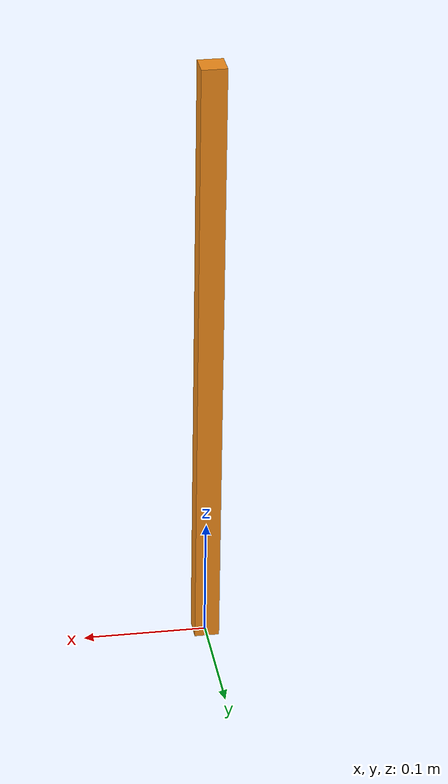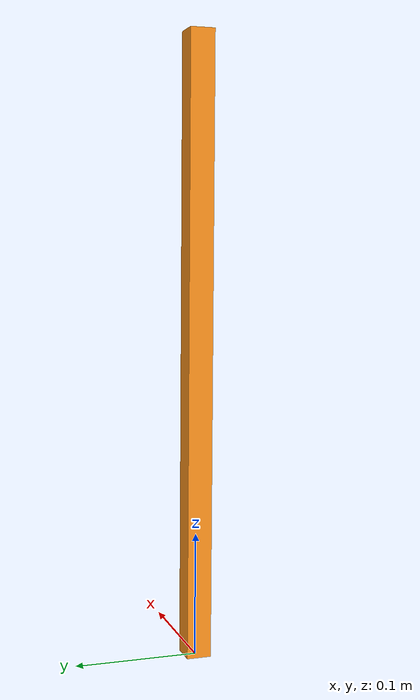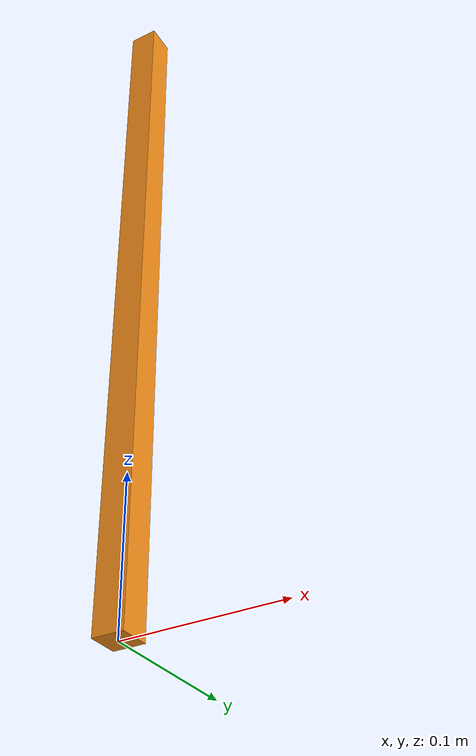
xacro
<?xml version="1.0"?>
<robot name="one_link_geometry" xmlns:xacro="http://ros.org/wiki/xacro">

	<!-- Robot Constant Parameters defined as xarco -->
	<xacro:property name="PI" value="3.1415926535897931"/>
	<xacro:property name="mass" value="0.5"/>         <!-- unit it is in kg -->
	<xacro:property name="width" value="0.02"/> 	<!-- unit it is in meter -->
	<xacro:property name="height" value="0.5"/>  <!-- unit it is in meter -->

  <!-- Import all Gazebo-customization elements, including Gazebo colors -->
  <xacro:include filename="$(find link_test)/urdf/one_link_geometry.gazebo" />

	<!-- This material is for RViZ not in Gazebo -->
	<material name="blue">
    <color rgba="0 0 0.8 1"/>
  </material>

  <material name="black">
    <color rgba="0 0 0 1"/>
  </material>

  <material name="white">
    <color rgba="1 1 1 1"/>
  </material>

  <!-- This is the wolrd / ground link to fix the robot to the ground -->
  <link name="world"/>
  <!-- This is the joint that connect the link1 with ground-->
  <joint name="joint1" type="revolute">
    <axis xyz="1 0 0"/>
    <limit effort="100" lower="${-PI/2}" upper="${PI/2}" velocity="0.0"/>
    <dynamics damping="0.0"/>
    <origin xyz="0 0 0"/>
  	<parent link="world"/>
  	<child link="link1"/>
  </joint>

  <!-- One Link -->
  <link name="link1">
    <!-- The value in collision and visual are same-->
  	<collision>
  		<origin xyz="0 0 ${height/2}" rpy="0 0 0"/>
  		<geometry>
  			<box size="${width} ${width} ${height}"/>
  		</geometry>
  	</collision>

  	<visual>
  		<origin xyz="0 0 ${height/2}" rpy="0 0 0"/>
  		<geometry>
  			<box size="${width} ${width} ${height}"/>
  		</geometry>
  	</visual>

  	<inertial>
  		<origin xyz="0 0 0" rpy="0 0 0"/>
  		<mass value="${mass}"/>
  		<inertia
  			ixx="${mass / 12.0 * (width*width + height*height)}" ixy="0.0" ixz="0.0"
  			iyy="${mass / 12.0 * (height*height + width*width)}" iyz="0.0"
  			izz="${mass / 12.0 * (width*width + width*width)}"/>
  	</inertial>

  </link>

  <transmission name="tran1">
    <type>transmission_interface/SimpleTransmission</type>
    <joint name="joint1">
      <hardwareInterface>hardware_interface/EffortJointInterface</hardwareInterface>
    </joint>
    <actuator name="motor1">
      <hardwareInterface>hardware_interface/EffortJointInterface</hardwareInterface>
      <mechanicalReduction>1</mechanicalReduction>
    </actuator>
  </transmission>

</robot>
